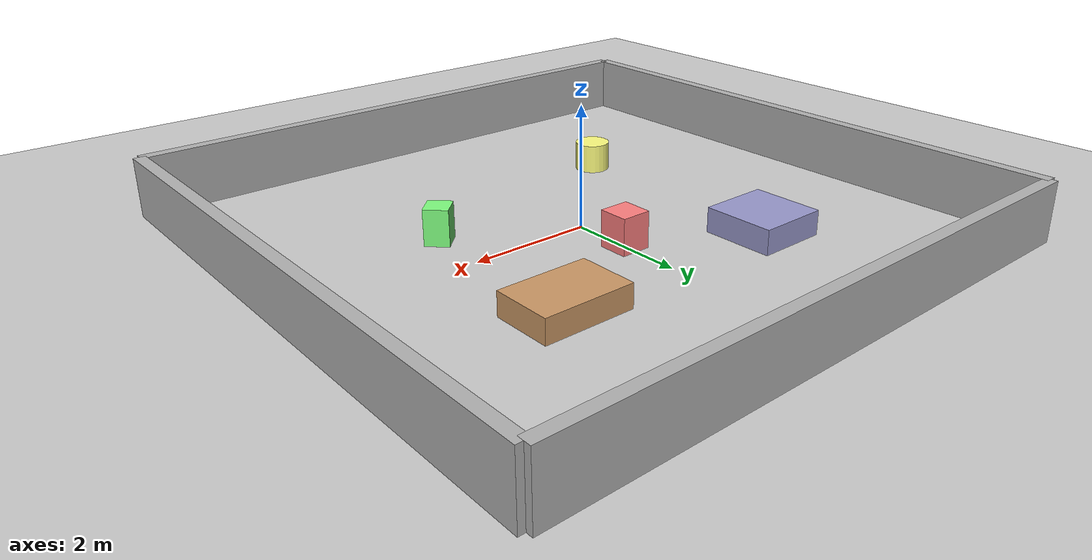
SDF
<?xml version="1.0" ?>
<sdf version="1.10">
  <world name="lab_world">
    <!-- Physics -->
    <physics type="ode">
      <max_step_size>0.001</max_step_size>
      <real_time_factor>1.0</real_time_factor>
    </physics>

    <!-- Gravity -->
    <gravity>0 0 -9.81</gravity>

    <!-- Plugins -->
    <plugin filename="gz-sim-physics-system"
            name="gz::sim::systems::Physics"/>
    <plugin filename="gz-sim-user-commands-system"
            name="gz::sim::systems::UserCommands"/>
    <plugin filename="gz-sim-scene-broadcaster-system"
            name="gz::sim::systems::SceneBroadcaster"/>
    <plugin filename="gz-sim-sensors-system"
            name="gz::sim::systems::Sensors">
      <render_engine>ogre2</render_engine>
    </plugin>
    <plugin filename="gz-sim-imu-system"
            name="gz::sim::systems::Imu"/>
    <plugin filename="gz-sim-contact-system"
            name="gz::sim::systems::Contact"/>
    <plugin name="gz_ros2_control-system" filename="gz-sim-systems">
    </plugin>

    <!-- Ground plane -->
    <model name="ground">
      <static>true</static>
      <link name="ground_link">
        <collision name="ground_collision">
          <geometry>
            <plane>
              <normal>0 0 1</normal>
              <size>20 20</size>
            </plane>
          </geometry>
        </collision>
        <visual name="ground_visual">
          <geometry>
            <plane>
              <normal>0 0 1</normal>
              <size>20 20</size>
            </plane>
          </geometry>
          <material>
            <ambient>0.8 0.8 0.8 1</ambient>
            <diffuse>0.8 0.8 0.8 1</diffuse>
            <specular>0.8 0.8 0.8 1</specular>
          </material>
        </visual>
      </link>
    </model>

    <!-- Lab Wall 1 (North) -->
    <model name="wall_north">
      <static>true</static>
      <pose>0 5 0.5 0 0 0</pose>
      <link name="wall_link">
        <collision name="wall_collision">
          <geometry>
            <box>
              <size>10 0.2 1</size>
            </box>
          </geometry>
        </collision>
        <visual name="wall_visual">
          <geometry>
            <box>
              <size>10 0.2 1</size>
            </box>
          </geometry>
          <material>
            <ambient>0.5 0.5 0.5 1</ambient>
            <diffuse>0.7 0.7 0.7 1</diffuse>
          </material>
        </visual>
      </link>
    </model>

    <!-- Lab Wall 2 (South) -->
    <model name="wall_south">
      <static>true</static>
      <pose>0 -5 0.5 0 0 0</pose>
      <link name="wall_link">
        <collision name="wall_collision">
          <geometry>
            <box>
              <size>10 0.2 1</size>
            </box>
          </geometry>
        </collision>
        <visual name="wall_visual">
          <geometry>
            <box>
              <size>10 0.2 1</size>
            </box>
          </geometry>
          <material>
            <ambient>0.5 0.5 0.5 1</ambient>
            <diffuse>0.7 0.7 0.7 1</diffuse>
          </material>
        </visual>
      </link>
    </model>

    <!-- Lab Wall 3 (East) -->
    <model name="wall_east">
      <static>true</static>
      <pose>5 0 0.5 0 0 0</pose>
      <link name="wall_link">
        <collision name="wall_collision">
          <geometry>
            <box>
              <size>0.2 10 1</size>
            </box>
          </geometry>
        </collision>
        <visual name="wall_visual">
          <geometry>
            <box>
              <size>0.2 10 1</size>
            </box>
          </geometry>
          <material>
            <ambient>0.5 0.5 0.5 1</ambient>
            <diffuse>0.7 0.7 0.7 1</diffuse>
          </material>
        </visual>
      </link>
    </model>

    <!-- Lab Wall 4 (West) -->
    <model name="wall_west">
      <static>true</static>
      <pose>-5 0 0.5 0 0 0</pose>
      <link name="wall_link">
        <collision name="wall_collision">
          <geometry>
            <box>
              <size>0.2 10 1</size>
            </box>
          </geometry>
        </collision>
        <visual name="wall_visual">
          <geometry>
            <box>
              <size>0.2 10 1</size>
            </box>
          </geometry>
          <material>
            <ambient>0.5 0.5 0.5 1</ambient>
            <diffuse>0.7 0.7 0.7 1</diffuse>
          </material>
        </visual>
      </link>
    </model>

    <!-- Table 1 (Desk/Workbench) -->
    <model name="table_1">
      <static>true</static>
      <pose>2 2 0 0 0 0</pose>
      <link name="table_link">
        <collision name="table_collision">
          <geometry>
            <box>
              <size>1.5 1.0 0.75</size>
            </box>
          </geometry>
        </collision>
        <visual name="table_visual">
          <geometry>
            <box>
              <size>1.5 1.0 0.75</size>
            </box>
          </geometry>
          <material>
            <ambient>0.6 0.4 0.2 1</ambient>
            <diffuse>0.8 0.6 0.4 1</diffuse>
          </material>
        </visual>
      </link>
    </model>

    <!-- Table 2 (Lab Equipment) -->
    <model name="table_2">
      <static>true</static>
      <pose>-2 2 0 0 0 0</pose>
      <link name="table_link">
        <collision name="table_collision">
          <geometry>
            <box>
              <size>1.2 1.2 0.8</size>
            </box>
          </geometry>
        </collision>
        <visual name="table_visual">
          <geometry>
            <box>
              <size>1.2 1.2 0.8</size>
            </box>
          </geometry>
          <material>
            <ambient>0.4 0.4 0.6 1</ambient>
            <diffuse>0.6 0.6 0.8 1</diffuse>
          </material>
        </visual>
      </link>
    </model>

    <!-- Obstacle Box 1 -->
    <model name="obstacle_1">
      <static>true</static>
      <pose>0 1 0.3 0 0 0</pose>
      <link name="obstacle_link">
        <collision name="obstacle_collision">
          <geometry>
            <box>
              <size>0.5 0.5 0.6</size>
            </box>
          </geometry>
        </collision>
        <visual name="obstacle_visual">
          <geometry>
            <box>
              <size>0.5 0.5 0.6</size>
            </box>
          </geometry>
          <material>
            <ambient>1.0 0.0 0.0 1</ambient>
            <diffuse>1.0 0.5 0.5 1</diffuse>
          </material>
        </visual>
      </link>
    </model>

    <!-- Obstacle Box 2 -->
    <model name="obstacle_2">
      <static>true</static>
      <pose>2 -1 0.3 0 0 0.785</pose>
      <link name="obstacle_link">
        <collision name="obstacle_collision">
          <geometry>
            <box>
              <size>0.4 0.4 0.6</size>
            </box>
          </geometry>
        </collision>
        <visual name="obstacle_visual">
          <geometry>
            <box>
              <size>0.4 0.4 0.6</size>
            </box>
          </geometry>
          <material>
            <ambient>0.0 1.0 0.0 1</ambient>
            <diffuse>0.5 1.0 0.5 1</diffuse>
          </material>
        </visual>
      </link>
    </model>

    <!-- Cylinder Obstacle -->
    <model name="cylinder_obstacle">
      <static>true</static>
      <pose>-2 -2 0.25 0 0 0</pose>
      <link name="cylinder_link">
        <collision name="cylinder_collision">
          <geometry>
            <cylinder>
              <radius>0.3</radius>
              <length>0.5</length>
            </cylinder>
          </geometry>
        </collision>
        <visual name="cylinder_visual">
          <geometry>
            <cylinder>
              <radius>0.3</radius>
              <length>0.5</length>
            </cylinder>
          </geometry>
          <material>
            <ambient>1.0 1.0 0.0 1</ambient>
            <diffuse>1.0 1.0 0.5 1</diffuse>
          </material>
        </visual>
      </link>
    </model>

    <!-- Lights -->
    <light type="directional" name="sun">
      <cast_shadows>true</cast_shadows>
      <pose>10 10 10 0 0 0</pose>
      <diffuse>0.8 0.8 0.8 1</diffuse>
      <specular>0.2 0.2 0.2 1</specular>
      <attenuation>
        <range>1000</range>
        <linear>0.01</linear>
        <constant>0.1</constant>
        <quadratic>0.001</quadratic>
      </attenuation>
      <direction>-0.5 0.5 -1</direction>
    </light>

  </world>
</sdf>
